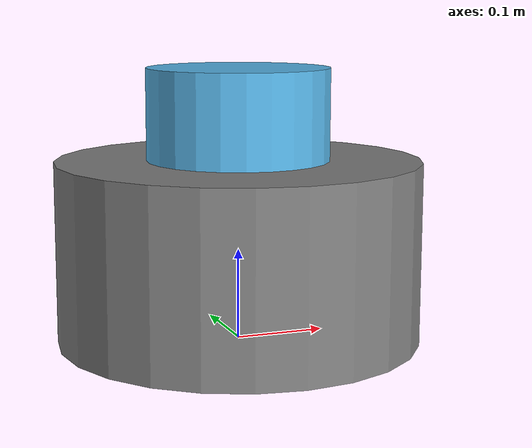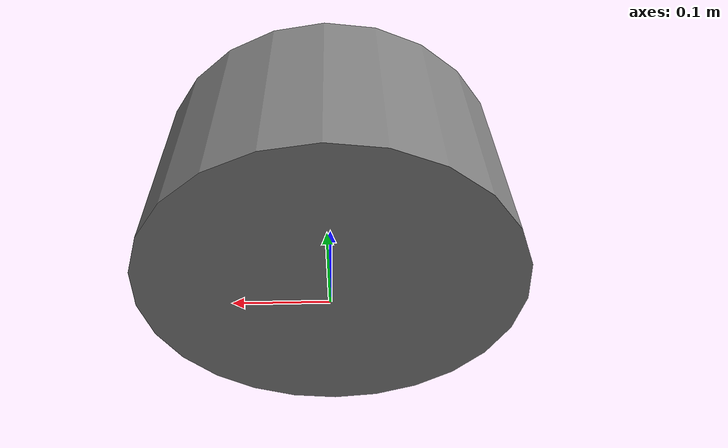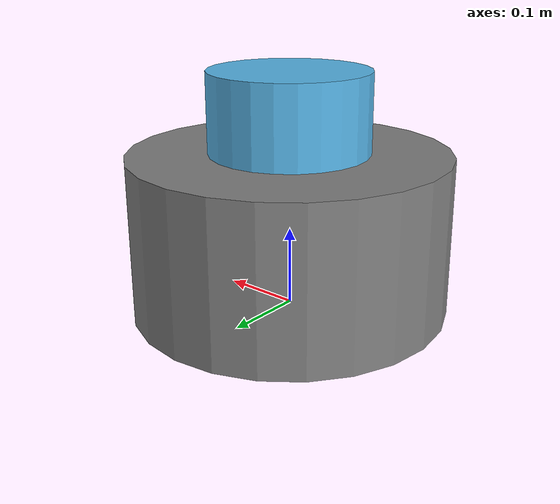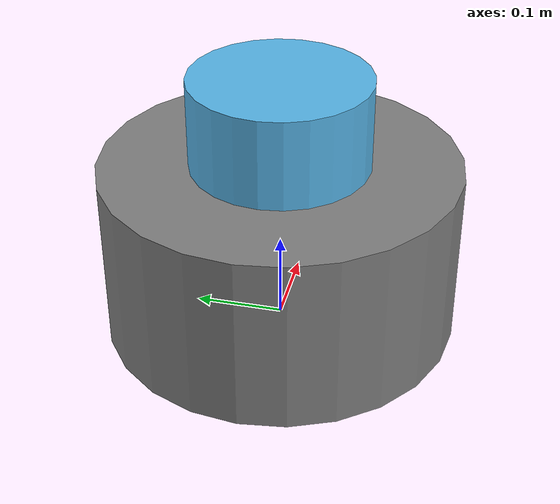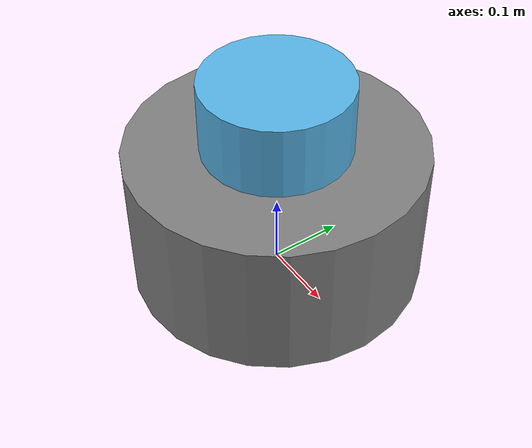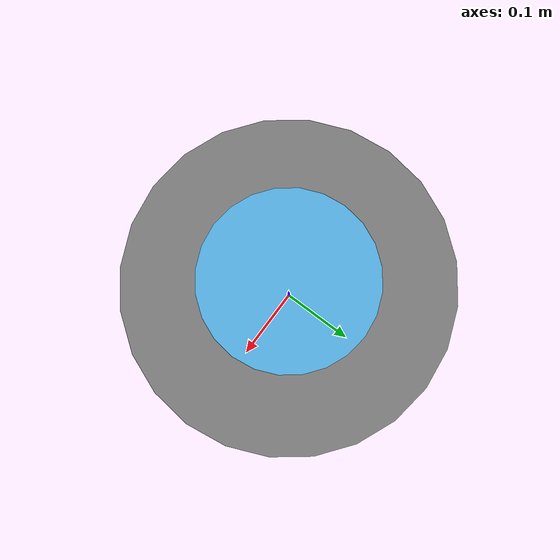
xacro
<?xml version="1.0"?>
<robot name="my_bot" xmlns:xacro="http://ros.org/wiki/xacro">

  <!-- Link unique -->
  <link name="base_link">
    <visual>
      <geometry>
        <cylinder length="0.2" radius="0.2"/>
      </geometry>
      <material name="gray">
        <color rgba="0.5 0.5 0.5 1"/>
      </material>
      <origin xyz="0 0 0.1" rpy="0 0 0"/>
    </visual>
    <collision>
      <geometry>
        <cylinder length="0.2" radius="0.2"/>
      </geometry>
      <origin xyz="0 0 0.1" rpy="0 0 0"/>
    </collision>
    <inertial>
      <mass value="1.0"/>
      <inertia ixx="0.01" ixy="0.0" ixz="0.0" iyy="0.01" iyz="0.0" izz="0.01"/>
      <origin xyz="0 0 0.1" rpy="0 0 0"/>
    </inertial>
  </link>

  <!-- Si tu veux faire bouger un joint, il faut au moins un joint -->
  <joint name="joint1" type="revolute">
    <parent link="base_link"/>
    <child link="link1"/>
    <origin xyz="0 0 0.2" rpy="0 0 0"/>
    <axis xyz="0 0 1"/>
    <limit effort="5.0" velocity="1.0" lower="-1.57" upper="1.57"/>
  </joint>

  <link name="link1">
    <visual>
      <geometry>
        <cylinder length="0.1" radius="0.1"/>
      </geometry>
      <origin xyz="0 0 0.05" rpy="0 0 0"/>
    </visual>
    <collision>
      <geometry>
        <cylinder length="0.1" radius="0.1"/>
      </geometry>
      <origin xyz="0 0 0.05" rpy="0 0 0"/>
    </collision>
    <inertial>
      <mass value="0.5"/>
      <inertia ixx="0.005" ixy="0.0" ixz="0.0" iyy="0.005" iyz="0.0" izz="0.005"/>
      <origin xyz="0 0 0.05" rpy="0 0 0"/>
    </inertial>
  </link>

  <!-- ros2_control -->
  <ros2_control name="MyRobotHardware" type="system">  #VERIFIER
    <hardware>
      <plugin>gazebo_ros2_control/GazeboSystemInterface</plugin>
    </hardware>

    <joint name="joint1">
      <command_interface name="position"/>
      <state_interface name="position"/>
    </joint>
  </ros2_control>

  <gazebo>
    <plugin name="gazebo_ros2_control" filename="libgazebo_ros2_control.so"/>
  </gazebo>

</robot>
